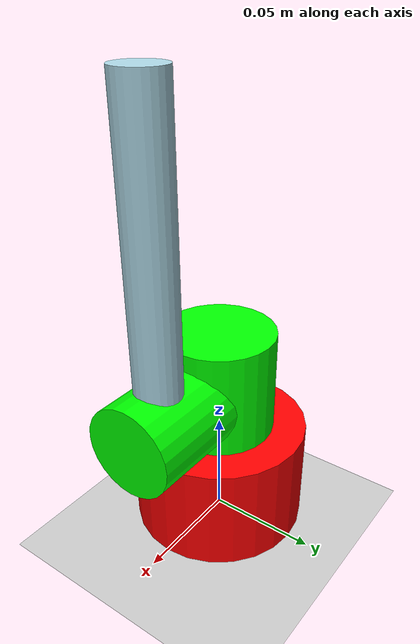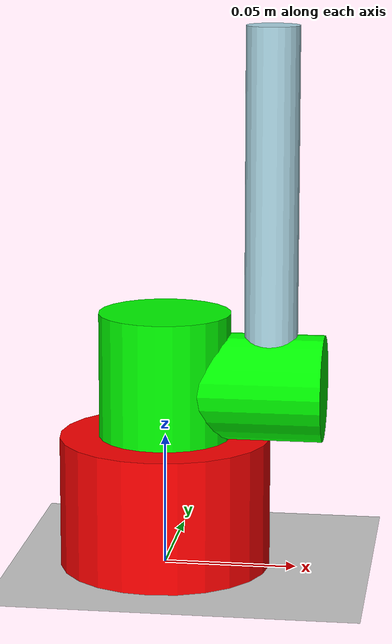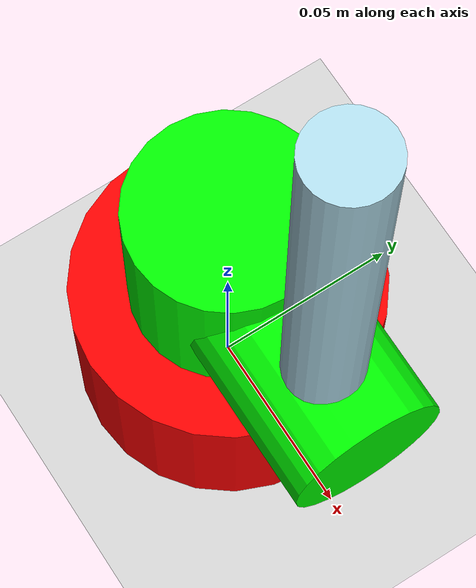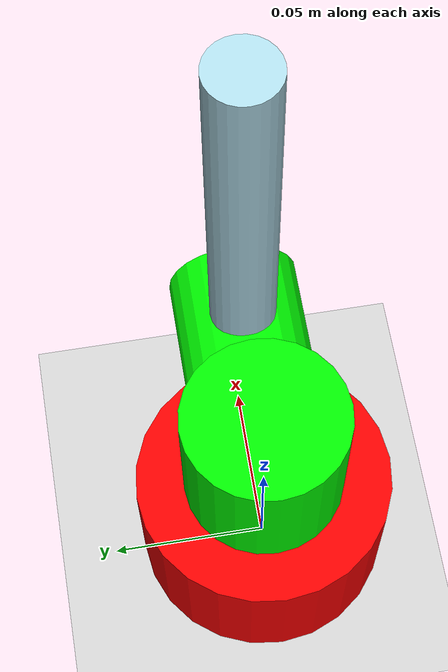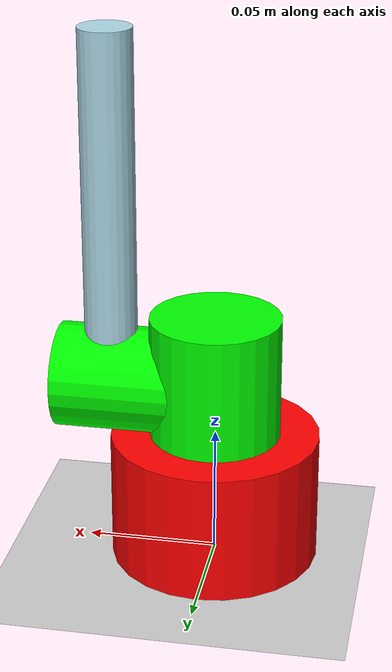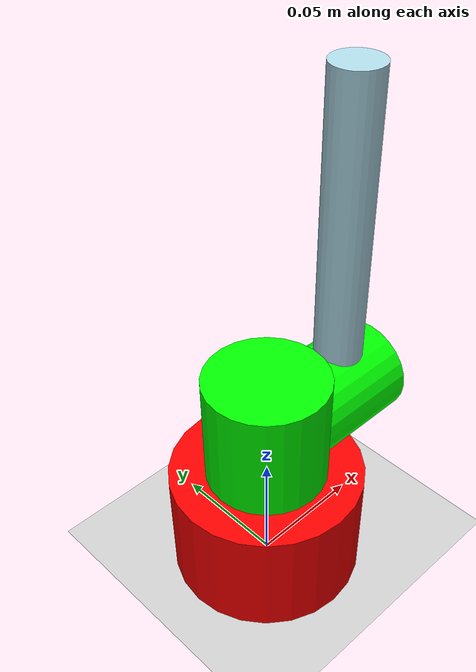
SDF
<?xml version="1.0" ?>
<sdf version="1.8">
  <world name="two_joint_arm_world">

    <!-- LIGHT -->

    <light type="directional" name="sun">
        <cast_shadows>true</cast_shadows>
        <pose>0 0 10 0 0 0</pose>
        <diffuse>0.8 0.8 0.8 1</diffuse>
        <specular>0.2 0.2 0.2 1</specular>
        <attenuation>
            <range>1000</range>
            <constant>0.9</constant>
            <linear>0.01</linear>
            <quadratic>0.001</quadratic>
        </attenuation>
        <direction>-0.5 0.1 -0.9</direction>
    </light>

                            <!--      MODELS      -->

                        <!--      Ground Plane      -->

    <!-- Ground Plane -->
    <model name="ground_plane">
      <static>true</static>
      <link name="link">
        <collision name="collision">
          <geometry>
            <plane>
              <normal>0 0 1</normal>
              <size>10 10</size>
            </plane>
          </geometry>
        </collision>
        <visual name="visual">
          <geometry>
            <plane>
              <normal>0 0 1</normal>
              <size>10 10</size>
            </plane>
          </geometry>

          <!-- COLOR!-->
          <material>
            <ambient>0.8 0.8 0.8 1</ambient>
            <diffuse>0.8 0.8 0.8 1</diffuse>
            <specular>0.5 0.5 0.5 1</specular>
          </material>
        </visual>
      </link>
    </model>

                            <!-- Robotic Arm Model -->

    <model name="two_joint_arm">

      <plugin
        filename="libignition-gazebo-joint-controller-system.so"
        name="ignition::gazebo::systems::JointController">
        <joint_name>joint0</joint_name>
        <topic>/two_joint_arm/joint0/pos_eff</topic>
        <joint_name>joint1</joint_name>
        <topic>/two_joint_arm/joint1/pos_eff</topic>
      </plugin>

      <plugin
        filename="libignition-gazebo-joint-state-publisher-system.so"
        name="ignition::gazebo::systems::JointStatePublisher">
      </plugin>

                                <!-- Arm Links -->

                               <!-- base link 0 -->

      <!-- Base Link -->
      <link name="base_link">

        <pose>0 0 0.025 0 0 0</pose>

        <collision name="base_collision">
          <geometry>
            <cylinder>
              <radius>0.04</radius> <!-- 8 cm diameter -->
              <length>0.05</length>
            </cylinder>
          </geometry>
        </collision>

        <visual name="base_visual">
          <geometry>
            <cylinder>
              <radius>0.04</radius>
              <length>0.05</length>
            </cylinder>
          </geometry>

          <!-- COLOR!-->
          <material>
            <ambient>1.0 0.0 0.0 1</ambient>
            <diffuse>1.0 0.0 0.0 1</diffuse>
            <specular>1.0 0.0 0.0 1</specular>
          </material>
        </visual>

        <inertial>
          <mass>100</mass>
          <inertia>
            <ixx>0.100</ixx>
            <ixy>0</ixy>
            <ixz>0</ixz>
            <iyy>0.100</iyy>
            <iyz>0</iyz>
            <izz>0.08</izz>
          </inertia>
        </inertial>
      </link>

                            <!-- Motor 0 link -->

      <link name="motor0">

        <pose>0 0 0.07 0 0 0</pose>

        <!-- COLLISION -->
        <collision name="motor0_collision">
            <geometry>
                <cylinder>
                    <radius>0.025</radius>
                    <length>0.055</length>
                </cylinder>
            </geometry>
        </collision>

        <!-- VISUAL -->
        <visual name="motor0_visual">
            <geometry>
                <cylinder>
                    <radius>0.025</radius> <!-- 5 cm diameter -->
                    <length>0.055</length> <!-- 5.5 cm height -->
                </cylinder>
            </geometry>
            <material>
                <ambient>0.0 1.0 0.0 1</ambient> <!-- Green -->
                <diffuse>0.0 1.0 0.0 1</diffuse> <!-- Green -->
                <specular>1.0 1.0 1.0 1</specular>
            </material>
        </visual>
        <inertial>
            <mass>10</mass>
            <inertia>
                <ixx>0.0001709375</ixx>
                <ixy>0</ixy>
                <ixz>0</ixz>
                <iyy>0.0001709375</iyy>
                <iyz>0</iyz>
                <izz>0.0003125</izz>
              </inertia>
        </inertial>
      </link>

                            <!-- Motor 1 link -->

      <link name="motor1">

        <pose relative_to="motor0">0.035 0 0 0 1.57079632679 0</pose>

        <!-- COLLISION -->
        <collision name="motor1 collision">
            <geometry>
                <cylinder>
                    <radius>0.025</radius>
                    <length>0.05</length>
                </cylinder>
            </geometry>
        </collision>

        <!-- VISUAL -->
        <visual name="motor1 visual">
            <geometry>
                <cylinder>
                    <radius>0.02</radius> <!-- 4 cm diameter -->
                    <length>0.05</length> <!-- 5 cm height -->
                </cylinder>
            </geometry>
            <material>
                <ambient>0.0 1.0 0.0 1</ambient> <!-- Green -->
                <diffuse>0.0 1.0 0.0 1</diffuse> <!-- Green -->
                <specular>1.0 1.0 1.0 1</specular>
            </material>
        </visual>
        <inertial>
            <mass>0.5</mass>
            <inertia>
                <ixx>0.0002291666667</ixx>
                <ixy>0</ixy>
                <ixz>0</ixz>
                <iyy>0.0002291666667</iyy>
                <iyz>0</iyz>
                <izz>0.0001</izz>
            </inertia>
        </inertial>
      </link>

                            <!-- first segment-->

      <link name="segment1">

        <pose relative_to="motor1">-0.06 0 0.005 0 -1.57079632679 0</pose>

        <!-- COLLISION -->
        <collision name="motor1 collision">
            <geometry>
                <cylinder>
                    <radius>0.01</radius>
                    <length>0.15</length>
                </cylinder>
            </geometry>
        </collision>

        <!-- VISUAL -->
        <visual name="motor1 visual">
            <geometry>
                <cylinder>
                    <radius>0.01</radius> <!-- 4 cm diameter -->
                    <length>0.15</length> <!-- 10 cm height -->
                </cylinder>
            </geometry>
            <material>
                <ambient>0.678 0.847 0.902 1</ambient> <!-- Light Blue -->
                <diffuse>0.678 0.847 0.902 1</diffuse>
                <specular>1.0 1.0 1.0 1</specular>
            </material>
        </visual>
        <inertial>
          <mass>0.5</mass>
          <inertia>
              <ixx>0.00013125</ixx>
              <ixy>0</ixy>
              <ixz>0</ixz>
              <iyy>0.00013125</iyy>
              <iyz>0</iyz>
              <izz>0.0000025</izz>
          </inertia>
        </inertial>
      </link>

                        <!--      JOINTS      -->

                            <!-- joint 0  -->

      <joint name="joint0" type="revolute">
         <parent>base_link</parent>
          <child>motor0</child>
          <axis>
              <xyz>0 0 1</xyz> <!-- Z-axis rotation -->
              <limit>
                <lower>-3.14159265359</lower> <!-- -180 degrees -->
                <upper>3.14159265359</upper>  <!-- 180 degrees -->
                <effort>1e6</effort>
              </limit>
          </axis>
          <pose>0 0 -0.025 0 0 0</pose>
      </joint>

                            <!-- joint 1  -->

      <joint name="joint1" type="revolute">
        <parent>motor0</parent>
         <child>motor1</child>
         <axis>
             <xyz>0 0 1</xyz>
             <limit>
                <lower>-3.14159265359</lower>
                <upper>3.14159265359</upper>
                <effort>1e6</effort>
             </limit>
         </axis>
         <pose>0 0 0 0 0 0</pose>
      </joint>

                            <!-- fixed joint 0  -->

      <joint name="fixed1" type="fixed">
        <parent>motor1</parent>
        <child>segment1</child>
        <pose>-0.057 0 0.005 0 -1.57079632679 0</pose>
      </joint>
    </model>
  </world>
</sdf>
